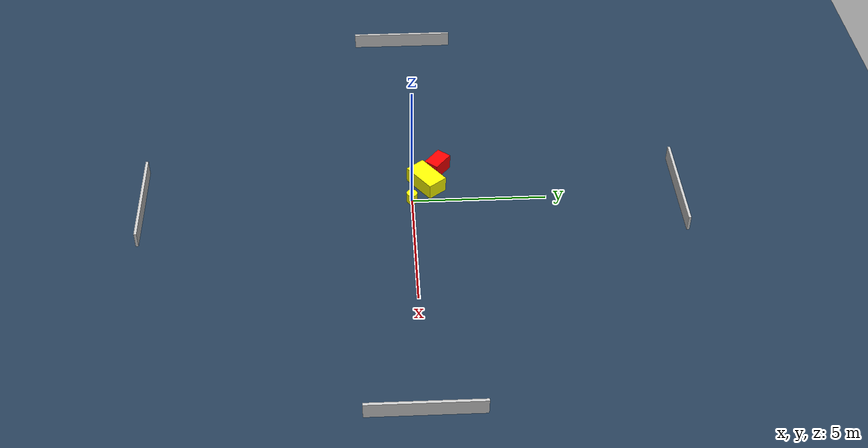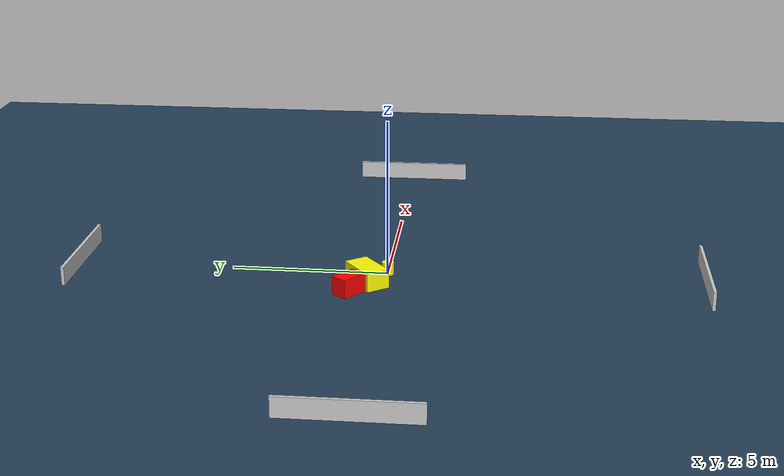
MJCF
<?xml version="1.0" ?>
<mujoco model="generated_environment">
  <option timestep="0.01" integrator="RK4" cone="elliptic"/>
  <default>
    <geom density="1"/>
  </default>
  <asset>
    <texture builtin="gradient" height="3072" name="skybox" rgb1="0.3 0.5 0.7" rgb2="0 0 0" type="skybox" width="512"/>
    <texture builtin="checker" height="300" name="groundplane" rgb1="0.2 0.3 0.4" rgb2="0.1 0.2 0.3" type="2d" width="300"/>
    <material name="groundplane" reflectance="0.2" texrepeat="5 5" texture="groundplane"/>
  </asset>
  <worldbody>
    <light dir="0 0 -1" directional="true" pos="0 0 1.5"/>
    <geom condim="3" friction="0.5 0.005 0.001" material="groundplane" name="floor" pos="0 0 0" size="0 0 0.05" type="plane"/>
    <body name="walls">
      <geom name="wall_1" condim="4" pos="-10.0 0.0 0.3" rgba="0.800000011920929 0.800000011920929 0.800000011920929 1.0" size="0.05 2.0 0.3" type="box"/>
      <geom name="wall_2" condim="4" pos="10.0 0.0 0.3" rgba="0.800000011920929 0.800000011920929 0.800000011920929 1.0" size="0.05 2.0 0.3" type="box"/>
      <geom name="wall_3" condim="4" pos="0.0 -10.0 0.3" rgba="0.800000011920929 0.800000011920929 0.800000011920929 1.0" size="2.0 0.05 0.3" type="box"/>
      <geom name="wall_4" condim="4" pos="0.0 10.0 0.3" rgba="0.800000011920929 0.800000011920929 0.800000011920929 1.0" size="2.0 0.05 0.3" type="box"/>
    </body>
    <body name="robot">
      <joint name="joint_x" type="slide" pos="0 0 0" axis="1 0 0"/>
      <joint name="joint_y" type="slide" pos="0 0 0" axis="0 1 0"/>
      <geom name="robot" type="cylinder" pos="0.0 0.0 0.2" size="0.2 0.2 0.0" mass="5.0" friction="1.0 0.005 0.0001" condim="4" rgba="1.0 1.0 0.0 1.0"/>
    </body>
    <body name="obstacle_1_movable">
      <geom name="obstacle_1_movable" condim="4" pos="-0.8633735229026067 0.5758489653397916 0.3" euler="0 0 307.25223187349235" friction="0.0 0.005 0.001" rgba="1.0 1.0 0.0 1.0" size="0.3916264951037894 0.6779746204347386 0.3" type="box" mass="0.1"/>
      <joint type="free"/>
    </body>
    <body name="obstacle_2_static">
      <geom name="obstacle_2_static" condim="4" pos="-1.6992541435606912 1.0484899169803636 0.3" euler="0 0 50.75167714437476" friction="0.0 0.005 0.001" rgba="1.0 0.0 0.0 1.0" size="0.28384140790546525 0.431581032066097 0.3" type="box"/>
    </body>
  </worldbody>
  <actuator>
    <motor name="actuator_x" joint="joint_x" gear="1" ctrlrange="-1 1"/>
    <motor name="actuator_y" joint="joint_y" gear="1" ctrlrange="-1 1"/>
  </actuator>
</mujoco>
